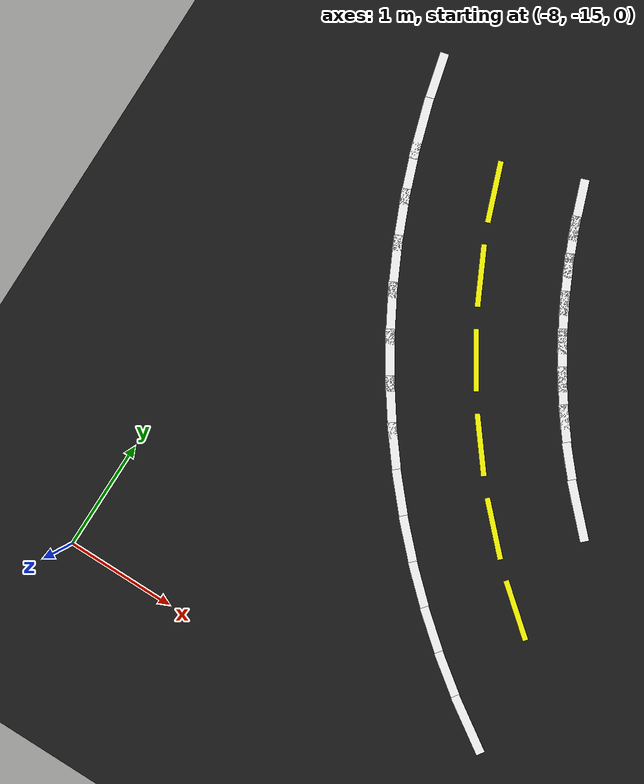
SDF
<sdf version="1.6">
 <world name="lane_world">
  <model name="ground">
   <static>true</static>
   <link name="link">
    <visual name="v">
     <geometry><plane><normal>0 0 1</normal><size>80 80</size></plane></geometry>
     <material><ambient>0.10 0.10 0.10 1</ambient><diffuse>0.10 0.10 0.10 1</diffuse></material>
    </visual>
    <collision name="c"><geometry><plane><normal>0 0 1</normal><size>80 80</size></plane></geometry></collision>
   </link>
  </model>
  <model name="seg_0474">
   <static>true</static>
   <pose>-4.2524 -14.4792 0.002 0 0 -0.5808</pose>
   <link name="link">
    <visual name="v">
     <geometry><box><size>0.550 0.080 0.0020</size></box></geometry>
     <material><ambient>1 1 1 1</ambient><diffuse>1 1 1 1</diffuse></material>
    </visual>
   </link>
  </model>
  <model name="seg_0477">
   <static>true</static>
   <pose>-4.5884 -14.2457 0.002 0 0 -0.6336</pose>
   <link name="link">
    <visual name="v">
     <geometry><box><size>0.550 0.080 0.0020</size></box></geometry>
     <material><ambient>1 1 1 1</ambient><diffuse>1 1 1 1</diffuse></material>
    </visual>
   </link>
  </model>
  <model name="seg_0479">
   <static>true</static>
   <pose>-4.9116 -13.9949 0.002 0 0 -0.6864</pose>
   <link name="link">
    <visual name="v">
     <geometry><box><size>0.550 0.080 0.0020</size></box></geometry>
     <material><ambient>1 1 1 1</ambient><diffuse>1 1 1 1</diffuse></material>
    </visual>
   </link>
  </model>
  <model name="seg_0480">
   <static>true</static>
   <pose>-4.4363 -13.4147 0.002 0 0 -0.6864</pose>
   <link name="link">
    <visual name="v">
     <geometry><box><size>0.550 0.05 0.0020</size></box></geometry>
     <material><ambient>1 1 0 1</ambient><diffuse>1 1 0 1</diffuse></material>
    </visual>
   </link>
  </model>
  <model name="seg_0482">
   <static>true</static>
   <pose>-5.2211 -13.7273 0.002 0 0 -0.7392</pose>
   <link name="link">
    <visual name="v">
     <geometry><box><size>0.550 0.080 0.0020</size></box></geometry>
     <material><ambient>1 1 1 1</ambient><diffuse>1 1 1 1</diffuse></material>
    </visual>
   </link>
  </model>
  <model name="seg_0483">
   <static>true</static>
   <pose>-4.4485 -12.3902 0.002 0 0 -0.7920</pose>
   <link name="link">
    <visual name="v">
     <geometry><box><size>0.550 0.080 0.0020</size></box></geometry>
     <material><ambient>1 1 1 1</ambient><diffuse>1 1 1 1</diffuse></material>
    </visual>
   </link>
  </model>
  <model name="seg_0484">
   <static>true</static>
   <pose>-5.5161 -13.4438 0.002 0 0 -0.7920</pose>
   <link name="link">
    <visual name="v">
     <geometry><box><size>0.550 0.080 0.0020</size></box></geometry>
     <material><ambient>1 1 1 1</ambient><diffuse>1 1 1 1</diffuse></material>
    </visual>
   </link>
  </model>
  <model name="seg_0485">
   <static>true</static>
   <pose>-4.9823 -12.9170 0.002 0 0 -0.7920</pose>
   <link name="link">
    <visual name="v">
     <geometry><box><size>0.550 0.05 0.0020</size></box></geometry>
     <material><ambient>1 1 0 1</ambient><diffuse>1 1 0 1</diffuse></material>
    </visual>
   </link>
  </model>
  <model name="seg_0486">
   <static>true</static>
   <pose>-4.6740 -12.1493 0.002 0 0 -0.8448</pose>
   <link name="link">
    <visual name="v">
     <geometry><box><size>0.550 0.080 0.0020</size></box></geometry>
     <material><ambient>1 1 1 1</ambient><diffuse>1 1 1 1</diffuse></material>
    </visual>
   </link>
  </model>
  <model name="seg_0487">
   <static>true</static>
   <pose>-5.7957 -13.1451 0.002 0 0 -0.8448</pose>
   <link name="link">
    <visual name="v">
     <geometry><box><size>0.550 0.080 0.0020</size></box></geometry>
     <material><ambient>1 1 1 1</ambient><diffuse>1 1 1 1</diffuse></material>
    </visual>
   </link>
  </model>
  <model name="seg_0488">
   <static>true</static>
   <pose>-4.8864 -11.8968 0.002 0 0 -0.8976</pose>
   <link name="link">
    <visual name="v">
     <geometry><box><size>0.550 0.080 0.0020</size></box></geometry>
     <material><ambient>1 1 1 1</ambient><diffuse>1 1 1 1</diffuse></material>
    </visual>
   </link>
  </model>
  <model name="seg_0489">
   <static>true</static>
   <pose>-6.0592 -12.8320 0.002 0 0 -0.8976</pose>
   <link name="link">
    <visual name="v">
     <geometry><box><size>0.550 0.080 0.0020</size></box></geometry>
     <material><ambient>1 1 1 1</ambient><diffuse>1 1 1 1</diffuse></material>
    </visual>
   </link>
  </model>
  <model name="seg_0490">
   <static>true</static>
   <pose>-5.4728 -12.3644 0.002 0 0 -0.8976</pose>
   <link name="link">
    <visual name="v">
     <geometry><box><size>0.550 0.05 0.0020</size></box></geometry>
     <material><ambient>1 1 0 1</ambient><diffuse>1 1 0 1</diffuse></material>
    </visual>
   </link>
  </model>
  <model name="seg_0491">
   <static>true</static>
   <pose>-5.0853 -11.6335 0.002 0 0 -0.9504</pose>
   <link name="link">
    <visual name="v">
     <geometry><box><size>0.550 0.080 0.0020</size></box></geometry>
     <material><ambient>1 1 1 1</ambient><diffuse>1 1 1 1</diffuse></material>
    </visual>
   </link>
  </model>
  <model name="seg_0492">
   <static>true</static>
   <pose>-6.3058 -12.5055 0.002 0 0 -0.9504</pose>
   <link name="link">
    <visual name="v">
     <geometry><box><size>0.550 0.080 0.0020</size></box></geometry>
     <material><ambient>1 1 1 1</ambient><diffuse>1 1 1 1</diffuse></material>
    </visual>
   </link>
  </model>
  <model name="seg_0493">
   <static>true</static>
   <pose>-5.2700 -11.3601 0.002 0 0 -1.0032</pose>
   <link name="link">
    <visual name="v">
     <geometry><box><size>0.550 0.080 0.0020</size></box></geometry>
     <material><ambient>1 1 1 1</ambient><diffuse>1 1 1 1</diffuse></material>
    </visual>
   </link>
  </model>
  <model name="seg_0494">
   <static>true</static>
   <pose>-6.5348 -12.1665 0.002 0 0 -1.0032</pose>
   <link name="link">
    <visual name="v">
     <geometry><box><size>0.550 0.080 0.0020</size></box></geometry>
     <material><ambient>1 1 1 1</ambient><diffuse>1 1 1 1</diffuse></material>
    </visual>
   </link>
  </model>
  <model name="seg_0495">
   <static>true</static>
   <pose>-5.9024 -11.7633 0.002 0 0 -1.0032</pose>
   <link name="link">
    <visual name="v">
     <geometry><box><size>0.550 0.05 0.0020</size></box></geometry>
     <material><ambient>1 1 0 1</ambient><diffuse>1 1 0 1</diffuse></material>
    </visual>
   </link>
  </model>
  <model name="seg_0496">
   <static>true</static>
   <pose>-5.4399 -11.0772 0.002 0 0 -1.0560</pose>
   <link name="link">
    <visual name="v">
     <geometry><box><size>0.550 0.080 0.0020</size></box></geometry>
     <material><ambient>1 1 1 1</ambient><diffuse>1 1 1 1</diffuse></material>
    </visual>
   </link>
  </model>
  <model name="seg_0497">
   <static>true</static>
   <pose>-6.7455 -11.8158 0.002 0 0 -1.0560</pose>
   <link name="link">
    <visual name="v">
     <geometry><box><size>0.550 0.080 0.0020</size></box></geometry>
     <material><ambient>1 1 1 1</ambient><diffuse>1 1 1 1</diffuse></material>
    </visual>
   </link>
  </model>
  <model name="seg_0498">
   <static>true</static>
   <pose>-5.5948 -10.7859 0.002 0 0 -1.1088</pose>
   <link name="link">
    <visual name="v">
     <geometry><box><size>0.550 0.080 0.0020</size></box></geometry>
     <material><ambient>1 1 1 1</ambient><diffuse>1 1 1 1</diffuse></material>
    </visual>
   </link>
  </model>
  <model name="seg_0499">
   <static>true</static>
   <pose>-6.9375 -11.4545 0.002 0 0 -1.1088</pose>
   <link name="link">
    <visual name="v">
     <geometry><box><size>0.550 0.080 0.0020</size></box></geometry>
     <material><ambient>1 1 1 1</ambient><diffuse>1 1 1 1</diffuse></material>
    </visual>
   </link>
  </model>
  <model name="seg_0500">
   <static>true</static>
   <pose>-6.2661 -11.1202 0.002 0 0 -1.1088</pose>
   <link name="link">
    <visual name="v">
     <geometry><box><size>0.550 0.05 0.0020</size></box></geometry>
     <material><ambient>1 1 0 1</ambient><diffuse>1 1 0 1</diffuse></material>
    </visual>
   </link>
  </model>
  <model name="seg_0501">
   <static>true</static>
   <pose>-5.7340 -10.4867 0.002 0 0 -1.1616</pose>
   <link name="link">
    <visual name="v">
     <geometry><box><size>0.550 0.080 0.0020</size></box></geometry>
     <material><ambient>1 1 1 1</ambient><diffuse>1 1 1 1</diffuse></material>
    </visual>
   </link>
  </model>
  <model name="seg_0502">
   <static>true</static>
   <pose>-7.1102 -11.0835 0.002 0 0 -1.1616</pose>
   <link name="link">
    <visual name="v">
     <geometry><box><size>0.550 0.080 0.0020</size></box></geometry>
     <material><ambient>1 1 1 1</ambient><diffuse>1 1 1 1</diffuse></material>
    </visual>
   </link>
  </model>
  <model name="seg_0503">
   <static>true</static>
   <pose>-5.8572 -10.1806 0.002 0 0 -1.2144</pose>
   <link name="link">
    <visual name="v">
     <geometry><box><size>0.550 0.080 0.0020</size></box></geometry>
     <material><ambient>1 1 1 1</ambient><diffuse>1 1 1 1</diffuse></material>
    </visual>
   </link>
  </model>
  <model name="seg_0504">
   <static>true</static>
   <pose>-7.2630 -10.7040 0.002 0 0 -1.2144</pose>
   <link name="link">
    <visual name="v">
     <geometry><box><size>0.550 0.080 0.0020</size></box></geometry>
     <material><ambient>1 1 1 1</ambient><diffuse>1 1 1 1</diffuse></material>
    </visual>
   </link>
  </model>
  <model name="seg_0505">
   <static>true</static>
   <pose>-6.5601 -10.4423 0.002 0 0 -1.2144</pose>
   <link name="link">
    <visual name="v">
     <geometry><box><size>0.550 0.05 0.0020</size></box></geometry>
     <material><ambient>1 1 0 1</ambient><diffuse>1 1 0 1</diffuse></material>
    </visual>
   </link>
  </model>
  <model name="seg_0507">
   <static>true</static>
   <pose>-7.3956 -10.3169 0.002 0 0 -1.2672</pose>
   <link name="link">
    <visual name="v">
     <geometry><box><size>0.550 0.080 0.0020</size></box></geometry>
     <material><ambient>1 1 1 1</ambient><diffuse>1 1 1 1</diffuse></material>
    </visual>
   </link>
  </model>
  <model name="seg_0509">
   <static>true</static>
   <pose>-7.5075 -9.9234 0.002 0 0 -1.3200</pose>
   <link name="link">
    <visual name="v">
     <geometry><box><size>0.550 0.080 0.0020</size></box></geometry>
     <material><ambient>1 1 1 1</ambient><diffuse>1 1 1 1</diffuse></material>
    </visual>
   </link>
  </model>
 </world>
</sdf>
